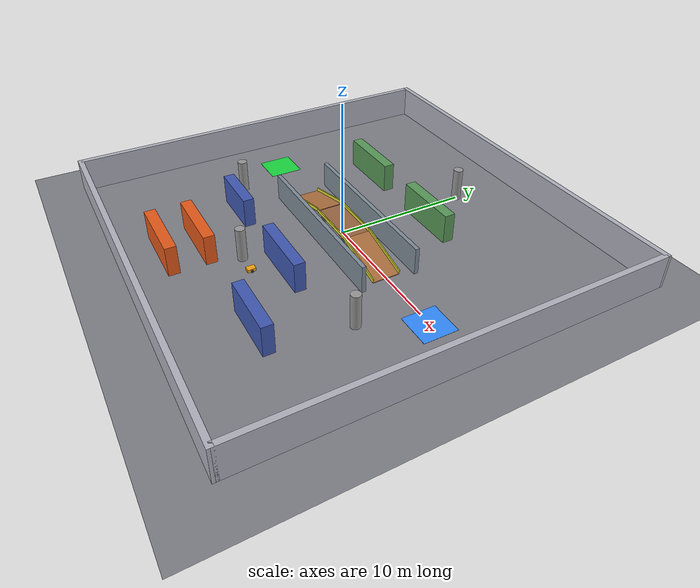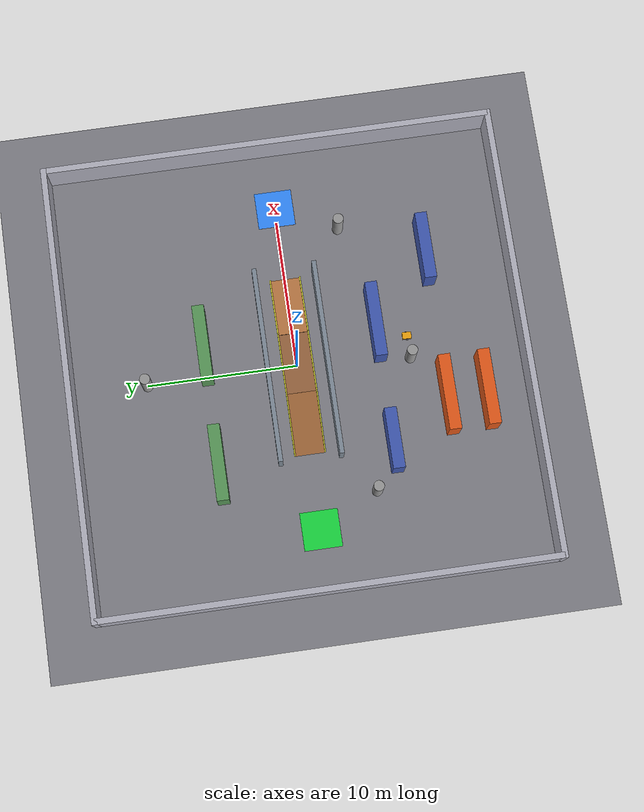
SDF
<sdf version="1.8">
 <world name="navigrid_arena">
  <physics name="1ms" type="ignored">
   <max_step_size>0.002</max_step_size>
   <real_time_factor>1.0</real_time_factor>
  </physics>
  <plugin filename="gz-sim-physics-system" name="gz::sim::systems::Physics"/>
  <plugin filename="gz-sim-sensors-system" name="gz::sim::systems::Sensors">
   <render_engine>ogre2</render_engine>
  </plugin>
  <plugin filename="gz-sim-imu-system" name="gz::sim::systems::Imu"/>
  <plugin filename="gz-sim-scene-broadcaster-system" name="gz::sim::systems::SceneBroadcaster"/>
  <plugin filename="gz-sim-user-commands-system" name="gz::sim::systems::UserCommands"/>
  <light type="directional" name="sun">
   <pose>0 0 20 0 0 0</pose>
   <diffuse>0.9 0.9 0.9 1</diffuse>
   <specular>0.3 0.3 0.3 1</specular>
   <direction>-0.5 0.2 -1.0</direction>
  </light>
  <light type="directional" name="fill_light">
   <cast_shadows>false</cast_shadows>
   <pose>0 0 15 0 0 0</pose>
   <diffuse>0.4 0.4 0.4 1</diffuse>
   <specular>0.1 0.1 0.1 1</specular>
   <direction>0.5 -0.2 -1.0</direction>
  </light>
  <model name="ground_plane">
   <static>true</static>
   <link name="link">
    <collision name="collision">
     <geometry><plane><normal>0 0 1</normal><size>30 30</size></plane></geometry>
     <surface><friction><ode><mu>1.0</mu><mu2>1.0</mu2></ode></friction></surface>
    </collision>
    <visual name="visual">
     <geometry><plane><normal>0 0 1</normal><size>30 30</size></plane></geometry>
     <material>
      <ambient>0.35 0.35 0.37 1.0</ambient>
      <diffuse>0.5 0.5 0.53 1.0</diffuse>
      <specular>0.1 0.1 0.1 1.0</specular>
     </material>
    </visual>
   </link>
  </model>
  <model name="boundary_walls">
   <static>true</static>
   <link name="north_wall">
    <pose>0 15.0 1.25 0 0 0</pose>
    <collision name="collision"><geometry><box><size>30.4 0.4 2.5</size></box></geometry></collision>
    <visual name="visual">
     <geometry><box><size>30.4 0.4 2.5</size></box></geometry>
     <material><ambient>0.7 0.7 0.75 1.0</ambient><diffuse>0.7 0.7 0.75 1.0</diffuse></material>
    </visual>
   </link>
   <link name="south_wall">
    <pose>0 -15.0 1.25 0 0 0</pose>
    <collision name="collision"><geometry><box><size>30.4 0.4 2.5</size></box></geometry></collision>
    <visual name="visual">
     <geometry><box><size>30.4 0.4 2.5</size></box></geometry>
     <material><ambient>0.7 0.7 0.75 1.0</ambient><diffuse>0.7 0.7 0.75 1.0</diffuse></material>
    </visual>
   </link>
   <link name="east_wall">
    <pose>15.0 0 1.25 0 0 0</pose>
    <collision name="collision"><geometry><box><size>0.4 30.0 2.5</size></box></geometry></collision>
    <visual name="visual">
     <geometry><box><size>0.4 30.0 2.5</size></box></geometry>
     <material><ambient>0.7 0.7 0.75 1.0</ambient><diffuse>0.7 0.7 0.75 1.0</diffuse></material>
    </visual>
   </link>
   <link name="west_wall">
    <pose>-15.0 0 1.25 0 0 0</pose>
    <collision name="collision"><geometry><box><size>0.4 30.0 2.5</size></box></geometry></collision>
    <visual name="visual">
     <geometry><box><size>0.4 30.0 2.5</size></box></geometry>
     <material><ambient>0.7 0.7 0.75 1.0</ambient><diffuse>0.7 0.7 0.75 1.0</diffuse></material>
    </visual>
   </link>
  </model>
  <model name="start_zone_a">
   <static>true</static>
   <pose>-11.0 0.0 0.005 0 0 0</pose>
   <link name="pad">
    <visual name="visual">
     <geometry><box><size>2.5 2.5 0.01</size></box></geometry>
     <material><ambient>0.1 0.75 0.25 1.0</ambient><diffuse>0.1 0.85 0.25 1.0</diffuse></material>
    </visual>
   </link>
  </model>
  <model name="goal_zone_b">
   <static>true</static>
   <pose>11.0 0.0 0.005 0 0 0</pose>
   <link name="pad">
    <visual name="visual">
     <geometry><box><size>2.5 2.5 0.01</size></box></geometry>
     <material><ambient>0.15 0.45 0.95 1.0</ambient><diffuse>0.2 0.55 1.0 1.0</diffuse></material>
    </visual>
   </link>
  </model>
  <model name="direct_incline_ramp">
   <static>true</static>
   <link name="ramp_up">
    <pose>-4.0 0 0.50 0 -0.244978 0</pose>
    <collision name="collision">
     <geometry><box><size>4.123 2.0 0.08</size></box></geometry>
     <surface><friction><ode><mu>1.5</mu><mu2>1.5</mu2></ode></friction></surface>
    </collision>
    <visual name="visual">
     <geometry><box><size>4.123 2.0 0.08</size></box></geometry>
     <material><ambient>0.6 0.4 0.2 1.0</ambient><diffuse>0.7 0.45 0.25 1.0</diffuse></material>
    </visual>
   </link>
   <link name="ramp_up_rail_left">
    <pose>-4.0 1.0 0.65 0 -0.244978 0</pose>
    <collision name="col"><geometry><box><size>4.123 0.08 0.25</size></box></geometry></collision>
    <visual name="vis">
     <geometry><box><size>4.123 0.08 0.25</size></box></geometry>
     <material><ambient>0.8 0.8 0.2 1.0</ambient><diffuse>0.9 0.9 0.2 1.0</diffuse></material>
    </visual>
   </link>
   <link name="ramp_up_rail_right">
    <pose>-4.0 -1.0 0.65 0 -0.244978 0</pose>
    <collision name="col"><geometry><box><size>4.123 0.08 0.25</size></box></geometry></collision>
    <visual name="vis">
     <geometry><box><size>4.123 0.08 0.25</size></box></geometry>
     <material><ambient>0.8 0.8 0.2 1.0</ambient><diffuse>0.9 0.9 0.2 1.0</diffuse></material>
    </visual>
   </link>
   <link name="bridge_deck">
    <pose>0.0 0 0.96 0 0 0</pose>
    <collision name="collision">
     <geometry><box><size>4.0 2.0 0.08</size></box></geometry>
     <surface><friction><ode><mu>1.5</mu><mu2>1.5</mu2></ode></friction></surface>
    </collision>
    <visual name="visual">
     <geometry><box><size>4.0 2.0 0.08</size></box></geometry>
     <material><ambient>0.5 0.35 0.2 1.0</ambient><diffuse>0.6 0.4 0.25 1.0</diffuse></material>
    </visual>
   </link>
   <link name="bridge_pillar_1">
    <pose>-1.5 0.8 0.46 0 0 0</pose>
    <collision name="col">
     <geometry><cylinder><radius>0.12</radius><length>0.92</length></cylinder></geometry>
    </collision>
    <visual name="vis">
     <geometry><cylinder><radius>0.12</radius><length>0.92</length></cylinder></geometry>
     <material><ambient>0.4 0.4 0.4 1</ambient><diffuse>0.4 0.4 0.4 1</diffuse></material>
    </visual>
   </link>
   <link name="bridge_pillar_2">
    <pose>-1.5 -0.8 0.46 0 0 0</pose>
    <collision name="col">
     <geometry><cylinder><radius>0.12</radius><length>0.92</length></cylinder></geometry>
    </collision>
    <visual name="vis">
     <geometry><cylinder><radius>0.12</radius><length>0.92</length></cylinder></geometry>
     <material><ambient>0.4 0.4 0.4 1</ambient><diffuse>0.4 0.4 0.4 1</diffuse></material>
    </visual>
   </link>
   <link name="bridge_pillar_3">
    <pose>1.5 0.8 0.46 0 0 0</pose>
    <collision name="col">
     <geometry><cylinder><radius>0.12</radius><length>0.92</length></cylinder></geometry>
    </collision>
    <visual name="vis">
     <geometry><cylinder><radius>0.12</radius><length>0.92</length></cylinder></geometry>
     <material><ambient>0.4 0.4 0.4 1</ambient><diffuse>0.4 0.4 0.4 1</diffuse></material>
    </visual>
   </link>
   <link name="bridge_pillar_4">
    <pose>1.5 -0.8 0.46 0 0 0</pose>
    <collision name="col">
     <geometry><cylinder><radius>0.12</radius><length>0.92</length></cylinder></geometry>
    </collision>
    <visual name="vis">
     <geometry><cylinder><radius>0.12</radius><length>0.92</length></cylinder></geometry>
     <material><ambient>0.4 0.4 0.4 1</ambient><diffuse>0.4 0.4 0.4 1</diffuse></material>
    </visual>
   </link>
   <link name="bridge_rail_left">
    <pose>0.0 1.0 1.12 0 0 0</pose>
    <collision name="col"><geometry><box><size>4.0 0.08 0.25</size></box></geometry></collision>
    <visual name="vis">
     <geometry><box><size>4.0 0.08 0.25</size></box></geometry>
     <material><ambient>0.8 0.8 0.2 1.0</ambient><diffuse>0.9 0.9 0.2 1.0</diffuse></material>
    </visual>
   </link>
   <link name="bridge_rail_right">
    <pose>0.0 -1.0 1.12 0 0 0</pose>
    <collision name="col"><geometry><box><size>4.0 0.08 0.25</size></box></geometry></collision>
    <visual name="vis">
     <geometry><box><size>4.0 0.08 0.25</size></box></geometry>
     <material><ambient>0.8 0.8 0.2 1.0</ambient><diffuse>0.9 0.9 0.2 1.0</diffuse></material>
    </visual>
   </link>
   <link name="ramp_down">
    <pose>4.0 0 0.50 0 0.244978 0</pose>
    <collision name="collision">
     <geometry><box><size>4.123 2.0 0.08</size></box></geometry>
     <surface><friction><ode><mu>1.5</mu><mu2>1.5</mu2></ode></friction></surface>
    </collision>
    <visual name="visual">
     <geometry><box><size>4.123 2.0 0.08</size></box></geometry>
     <material><ambient>0.6 0.4 0.2 1.0</ambient><diffuse>0.7 0.45 0.25 1.0</diffuse></material>
    </visual>
   </link>
   <link name="ramp_down_rail_left">
    <pose>4.0 1.0 0.65 0 0.244978 0</pose>
    <collision name="col"><geometry><box><size>4.123 0.08 0.25</size></box></geometry></collision>
    <visual name="vis">
     <geometry><box><size>4.123 0.08 0.25</size></box></geometry>
     <material><ambient>0.8 0.8 0.2 1.0</ambient><diffuse>0.9 0.9 0.2 1.0</diffuse></material>
    </visual>
   </link>
   <link name="ramp_down_rail_right">
    <pose>4.0 -1.0 0.65 0 0.244978 0</pose>
    <collision name="col"><geometry><box><size>4.123 0.08 0.25</size></box></geometry></collision>
    <visual name="vis">
     <geometry><box><size>4.123 0.08 0.25</size></box></geometry>
     <material><ambient>0.8 0.8 0.2 1.0</ambient><diffuse>0.9 0.9 0.2 1.0</diffuse></material>
    </visual>
   </link>
  </model>
  <model name="route_separators">
   <static>true</static>
   <link name="sep_south">
    <pose>0.0 -2.0 1.0 0 0 0</pose>
    <collision name="col"><geometry><box><size>13.0 0.3 2.0</size></box></geometry></collision>
    <visual name="vis">
     <geometry><box><size>13.0 0.3 2.0</size></box></geometry>
     <material><ambient>0.4 0.45 0.5 1.0</ambient><diffuse>0.5 0.55 0.6 1.0</diffuse></material>
    </visual>
   </link>
   <link name="sep_north">
    <pose>0.0 2.0 1.0 0 0 0</pose>
    <collision name="col"><geometry><box><size>13.0 0.3 2.0</size></box></geometry></collision>
    <visual name="vis">
     <geometry><box><size>13.0 0.3 2.0</size></box></geometry>
     <material><ambient>0.4 0.45 0.5 1.0</ambient><diffuse>0.5 0.55 0.6 1.0</diffuse></material>
    </visual>
   </link>
  </model>
  <model name="warehouse_racks">
   <static>true</static>
   <link name="rack_1">
    <pose>-6.0 -5.5 1.1 0 0 0</pose>
    <collision name="col"><geometry><box><size>4.0 0.8 2.2</size></box></geometry></collision>
    <visual name="vis">
     <geometry><box><size>4.0 0.8 2.2</size></box></geometry>
     <material><ambient>0.2 0.3 0.6 1.0</ambient><diffuse>0.25 0.35 0.7 1.0</diffuse></material>
    </visual>
   </link>
   <link name="rack_2">
    <pose>2.0 -5.5 1.1 0 0 0</pose>
    <collision name="col"><geometry><box><size>5.0 0.8 2.2</size></box></geometry></collision>
    <visual name="vis">
     <geometry><box><size>5.0 0.8 2.2</size></box></geometry>
     <material><ambient>0.2 0.3 0.6 1.0</ambient><diffuse>0.25 0.35 0.7 1.0</diffuse></material>
    </visual>
   </link>
   <link name="rack_choke_left">
    <pose>-3.5 -9.5 1.1 0 0 0</pose>
    <collision name="col"><geometry><box><size>5.0 0.8 2.2</size></box></geometry></collision>
    <visual name="vis">
     <geometry><box><size>5.0 0.8 2.2</size></box></geometry>
     <material><ambient>0.8 0.3 0.1 1.0</ambient><diffuse>0.9 0.35 0.1 1.0</diffuse></material>
    </visual>
   </link>
   <link name="rack_choke_right">
    <pose>-3.5 -12.1 1.1 0 0 0</pose>
    <collision name="col"><geometry><box><size>5.0 0.8 2.2</size></box></geometry></collision>
    <visual name="vis">
     <geometry><box><size>5.0 0.8 2.2</size></box></geometry>
     <material><ambient>0.8 0.3 0.1 1.0</ambient><diffuse>0.9 0.35 0.1 1.0</diffuse></material>
    </visual>
   </link>
   <link name="rack_4">
    <pose>6.5 -9.5 1.1 0 0 0</pose>
    <collision name="col"><geometry><box><size>4.5 0.8 2.2</size></box></geometry></collision>
    <visual name="vis">
     <geometry><box><size>4.5 0.8 2.2</size></box></geometry>
     <material><ambient>0.2 0.3 0.6 1.0</ambient><diffuse>0.25 0.35 0.7 1.0</diffuse></material>
    </visual>
   </link>
   <link name="rack_north_1">
    <pose>-6.0 6.0 1.1 0 0 0</pose>
    <collision name="col"><geometry><box><size>5.0 0.8 2.2</size></box></geometry></collision>
    <visual name="vis">
     <geometry><box><size>5.0 0.8 2.2</size></box></geometry>
     <material><ambient>0.3 0.5 0.3 1.0</ambient><diffuse>0.35 0.6 0.35 1.0</diffuse></material>
    </visual>
   </link>
   <link name="rack_north_2">
    <pose>2.0 6.0 1.1 0 0 0</pose>
    <collision name="col"><geometry><box><size>5.0 0.8 2.2</size></box></geometry></collision>
    <visual name="vis">
     <geometry><box><size>5.0 0.8 2.2</size></box></geometry>
     <material><ambient>0.3 0.5 0.3 1.0</ambient><diffuse>0.35 0.6 0.35 1.0</diffuse></material>
    </visual>
   </link>
  </model>
  <model name="structural_pillars">
   <static>true</static>
   <link name="pillar_1">
    <pose>-9.0 -4.0 1.25 0 0 0</pose>
    <collision name="col">
     <geometry><cylinder><radius>0.35</radius><length>2.5</length></cylinder></geometry>
    </collision>
    <visual name="vis">
     <geometry><cylinder><radius>0.35</radius><length>2.5</length></cylinder></geometry>
     <material><ambient>0.6 0.6 0.6 1</ambient><diffuse>0.6 0.6 0.6 1</diffuse></material>
    </visual>
   </link>
   <link name="pillar_2">
    <pose>-0.5 -7.5 1.25 0 0 0</pose>
    <collision name="col">
     <geometry><cylinder><radius>0.35</radius><length>2.5</length></cylinder></geometry>
    </collision>
    <visual name="vis">
     <geometry><cylinder><radius>0.35</radius><length>2.5</length></cylinder></geometry>
     <material><ambient>0.6 0.6 0.6 1</ambient><diffuse>0.6 0.6 0.6 1</diffuse></material>
    </visual>
   </link>
   <link name="pillar_3">
    <pose>9.0 -4.0 1.25 0 0 0</pose>
    <collision name="col">
     <geometry><cylinder><radius>0.35</radius><length>2.5</length></cylinder></geometry>
    </collision>
    <visual name="vis">
     <geometry><cylinder><radius>0.35</radius><length>2.5</length></cylinder></geometry>
     <material><ambient>0.6 0.6 0.6 1</ambient><diffuse>0.6 0.6 0.6 1</diffuse></material>
    </visual>
   </link>
   <link name="pillar_4">
    <pose>0.0 10.0 1.25 0 0 0</pose>
    <collision name="col">
     <geometry><cylinder><radius>0.35</radius><length>2.5</length></cylinder></geometry>
    </collision>
    <visual name="vis">
     <geometry><cylinder><radius>0.35</radius><length>2.5</length></cylinder></geometry>
     <material><ambient>0.6 0.6 0.6 1</ambient><diffuse>0.6 0.6 0.6 1</diffuse></material>
    </visual>
   </link>
  </model>
  <model name="secondary_amr">
   <pose>1.0 -7.5 0.15 0 0 1.57</pose>
   <link name="chassis">
    <inertial><mass>10.0</mass><inertia><ixx>0.2</ixx><iyy>0.2</iyy><izz>0.3</izz></inertia></inertial>
    <collision name="col"><geometry><box><size>0.6 0.45 0.22</size></box></geometry></collision>
    <visual name="vis">
     <geometry><box><size>0.6 0.45 0.22</size></box></geometry>
     <material><ambient>0.9 0.6 0.0 1.0</ambient><diffuse>0.95 0.65 0.05 1.0</diffuse></material>
    </visual>
   </link>
   <link name="left_wheel">
    <pose>0 0.25 -0.05 -1.570796 0 0</pose>
    <inertial><mass>1.0</mass><inertia><ixx>0.01</ixx><iyy>0.01</iyy><izz>0.01</izz></inertia></inertial>
    <collision name="col">
     <geometry><cylinder><radius>0.1</radius><length>0.05</length></cylinder></geometry>
    </collision>
    <visual name="vis">
     <geometry><cylinder><radius>0.1</radius><length>0.05</length></cylinder></geometry>
     <material><ambient>0.1 0.1 0.1 1</ambient><diffuse>0.1 0.1 0.1 1</diffuse></material>
    </visual>
   </link>
   <joint name="left_wheel_joint" type="revolute">
    <parent>chassis</parent>
    <child>left_wheel</child>
    <axis><xyz>0 0 1</xyz><limit><lower>-1e16</lower><upper>1e16</upper></limit></axis>
   </joint>
   <link name="right_wheel">
    <pose>0 -0.25 -0.05 1.570796 0 0</pose>
    <inertial><mass>1.0</mass><inertia><ixx>0.01</ixx><iyy>0.01</iyy><izz>0.01</izz></inertia></inertial>
    <collision name="col">
     <geometry><cylinder><radius>0.1</radius><length>0.05</length></cylinder></geometry>
    </collision>
    <visual name="vis">
     <geometry><cylinder><radius>0.1</radius><length>0.05</length></cylinder></geometry>
     <material><ambient>0.1 0.1 0.1 1</ambient><diffuse>0.1 0.1 0.1 1</diffuse></material>
    </visual>
   </link>
   <joint name="right_wheel_joint" type="revolute">
    <parent>chassis</parent>
    <child>right_wheel</child>
    <axis><xyz>0 0 -1</xyz><limit><lower>-1e16</lower><upper>1e16</upper></limit></axis>
   </joint>
   <link name="caster">
    <pose>0.2 0 -0.1 0 0 0</pose>
    <collision name="col"><geometry><sphere><radius>0.05</radius></sphere></geometry></collision>
    <visual name="vis"><geometry><sphere><radius>0.05</radius></sphere></geometry></visual>
   </link>
   <joint name="caster_joint" type="fixed"><parent>chassis</parent><child>caster</child></joint>
   <plugin filename="gz-sim-diff-drive-system" name="gz::sim::systems::DiffDrive">
    <left_joint>left_wheel_joint</left_joint>
    <right_joint>right_wheel_joint</right_joint>
    <wheel_separation>0.5</wheel_separation>
    <wheel_radius>0.1</wheel_radius>
    <topic>/secondary_amr/cmd_vel</topic>
    <odom_topic>/secondary_amr/odom</odom_topic>
    <frame_id>odom</frame_id>
    <child_frame_id>secondary_amr/base_link</child_frame_id>
   </plugin>
  </model>
 </world>
</sdf>
